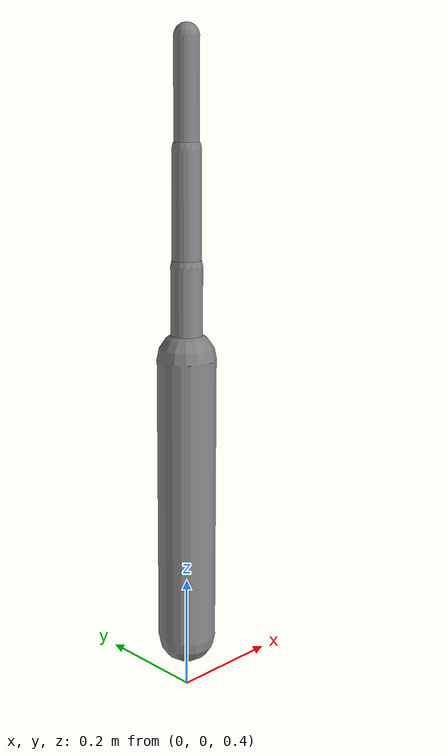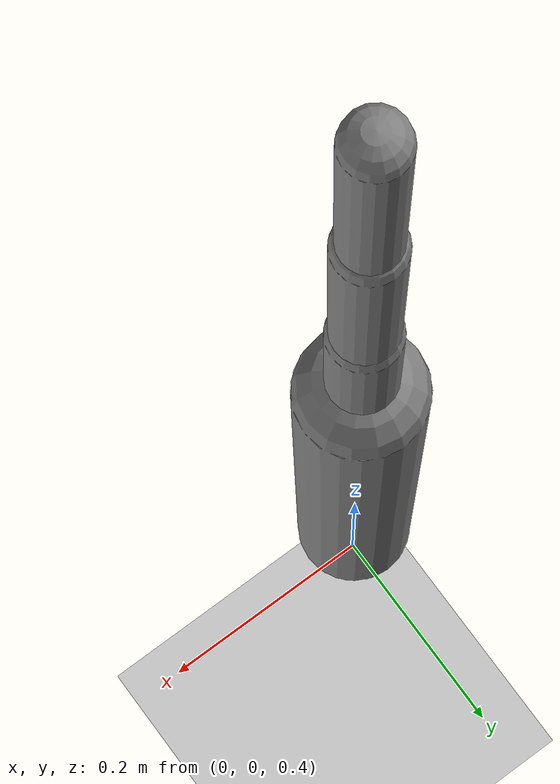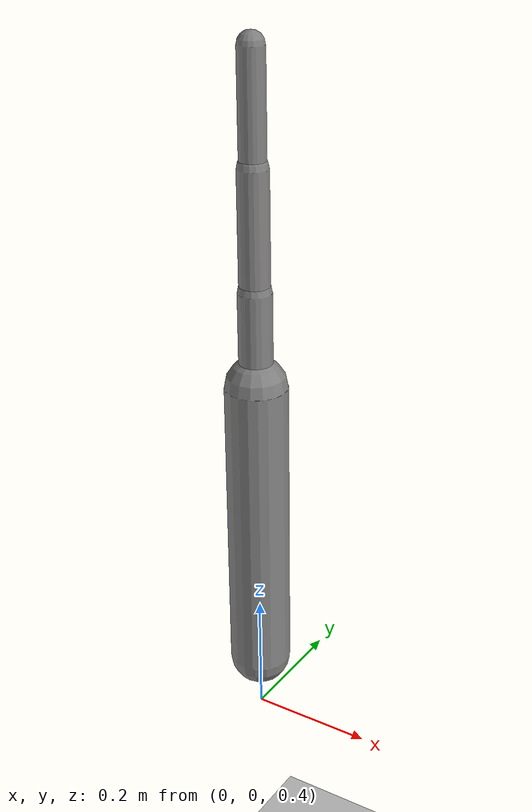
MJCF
<?xml version='1.0' encoding='UTF-8'?>
<mujoco model="RobotModel">
  <option gravity="0 0 -9.81" timestep="0.002" solver="CG" iterations="500" integrator="Euler"/>
  <worldbody>
    <geom name="Floor" type="plane" size="10 10 0.1" pos="0 0 0" rgba="0.8 0.8 0.8 1"/>
    <body name="Limb0" pos="0 0 0.5">
      <geom type="capsule" fromto="0 0 0 0 0 0.5" size="0.05" density="1000" contype="1" conaffinity="1"/>
      <body name="Limb0_0b2c7645" pos="0 0 0.5">
        <geom type="capsule" fromto="0 0 0 0 0 0.15477468625084267" size="0.026764542827049674" density="500.0" contype="1" conaffinity="1"/>
        <body name="Limb1_0b2c7645" pos="0 0 0.15477468625084267">
          <geom type="capsule" fromto="0 0 0 0 0 0.18804872959344204" size="0.024247732864466916" density="500.0" contype="1" conaffinity="1"/>
          <body name="Limb2_0b2c7645" pos="0 0 0.18804872959344204">
            <geom type="capsule" fromto="0 0 0 0 0 0.17298473603254969" size="0.020824515304925333" density="500.0" contype="1" conaffinity="1"/>
            <joint name="Joint_Limb1_0b2c7645_Limb2_0b2c7645_0" type="hinge" axis="0 1 0" range="-60 60"/>
          </body>
          <joint name="Joint_Limb0_0b2c7645_Limb1_0b2c7645_0" type="hinge" axis="0 1 0" range="-60 60"/>
        </body>
        <joint name="Joint_Limb0_Limb0_0b2c7645_0" type="hinge" axis="1 0 0" range="-60 60"/>
      </body>
      <body name="Limb3_0b2c7645" pos="0 0 0.5">
        <geom type="capsule" fromto="0 0 0 0 0 0.10845888014078042" size="0.02597927110970155" density="500.0" contype="1" conaffinity="1"/>
        <joint name="Joint_Limb0_Limb3_0b2c7645_0" type="hinge" axis="1 0 0" range="-60 60"/>
      </body>
    </body>
  </worldbody>
  <actuator>
    <position name="position_Actuator_Joint_Limb0_Limb0_0b2c7645_0" joint="Joint_Limb0_Limb0_0b2c7645_0" gear="1.0"/>
    <position name="position_Actuator_Joint_Limb0_0b2c7645_Limb1_0b2c7645_0" joint="Joint_Limb0_0b2c7645_Limb1_0b2c7645_0" gear="1.0"/>
    <position name="position_Actuator_Joint_Limb1_0b2c7645_Limb2_0b2c7645_0" joint="Joint_Limb1_0b2c7645_Limb2_0b2c7645_0" gear="1.0"/>
    <position name="position_Actuator_Joint_Limb0_Limb3_0b2c7645_0" joint="Joint_Limb0_Limb3_0b2c7645_0" gear="1.0"/>
  </actuator>
</mujoco>
